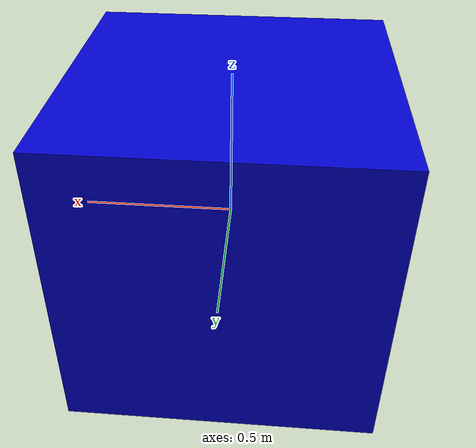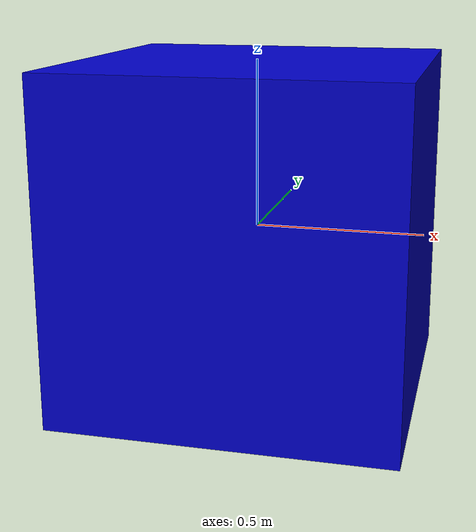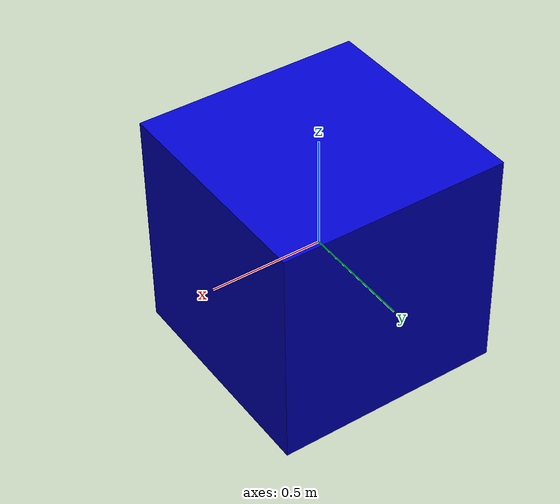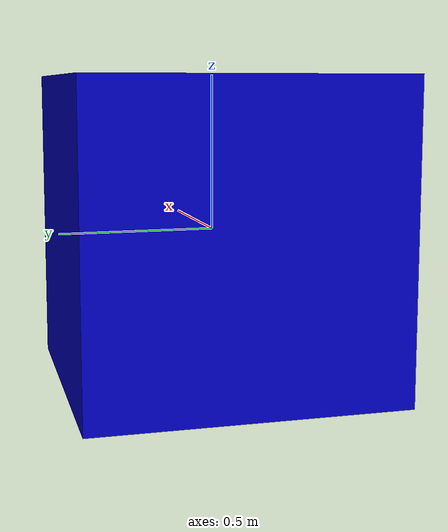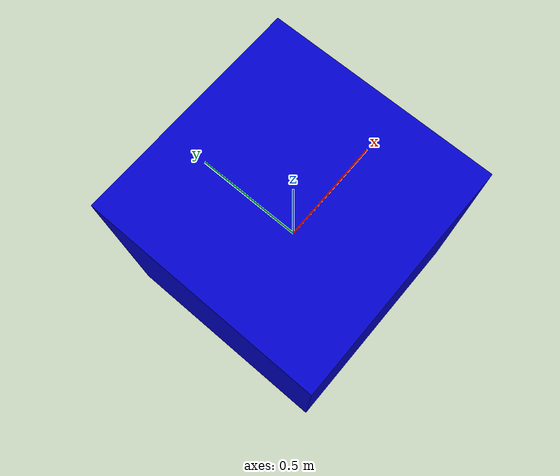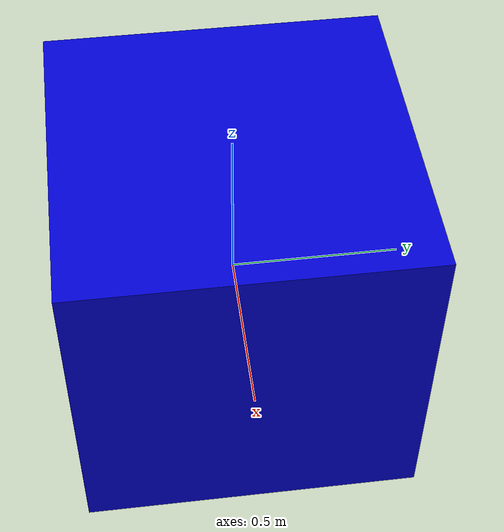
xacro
<?xml version="1.0"?>
<robot xmlns:xacro="http://www.ros.org/wiki/xacro" name="robot">
  <material name="blue">
    <color rgba="0 0 0.8 1"/>
  </material>

  <link name="base_footprint"/>

  <joint name="base_footprint_to_base_link" type="fixed">
    <parent link="base_footprint"/>
    <child link="base_link"/>
  </joint>

  <link name="base_link">
    <visual>
      <geometry>
        <sphere radius="0.01"/>
      </geometry>
    </visual>
    <collision>
      <geometry>
        <sphere radius="0.01"/>
      </geometry>
    </collision>
    <inertial>
      <mass value="0.01"/>
      <inertia ixx="0.01" ixy="0" ixz="0" iyy="0.01" iyz="0" izz="0.01"/>
    </inertial>
  </link>

  <joint name="base_link_to_box" type="revolute">
    <parent link="base_link"/>
    <child link="box"/>
    <origin xyz="0 0 0"/>
    <axis xyz="0 0 1"/>
    <limit effort="1000" lower="${-pi}" upper="${pi}" velocity="0.5"/>
  </joint>

  <link name="box">
    <visual>
      <geometry>
        <box size="1.0 1.0 1.0"/>
      </geometry>
      <material name="blue"/>
    </visual>
    <collision>
      <geometry>
        <box size="1.0 1.0 1.0"/>
      </geometry>
    </collision>
    <inertial>
      <mass value="0.1"/>
      <inertia ixx="0.01" ixy="0" ixz="0" iyy="0.01" iyz="0" izz="0.01"/>
    </inertial>
  </link>

</robot>
